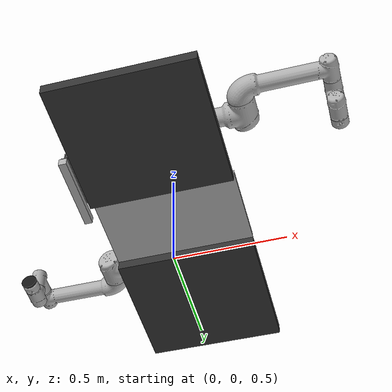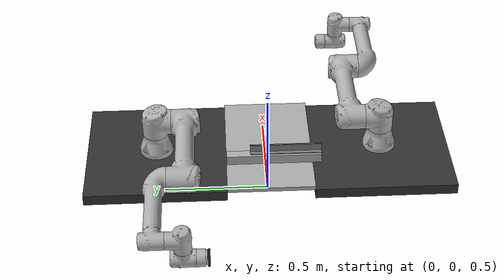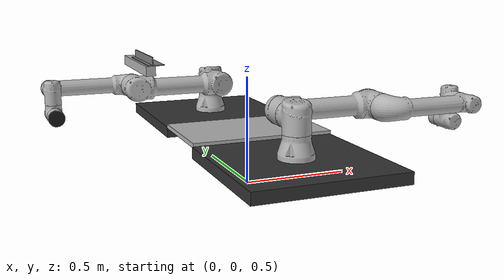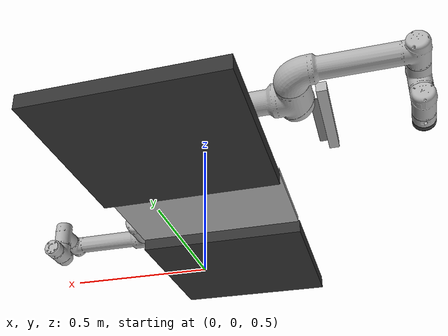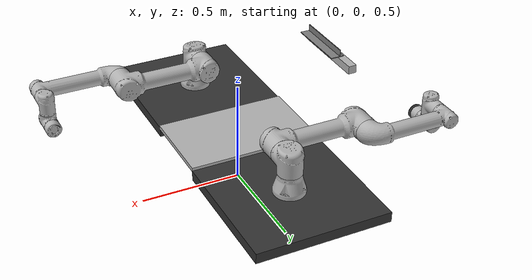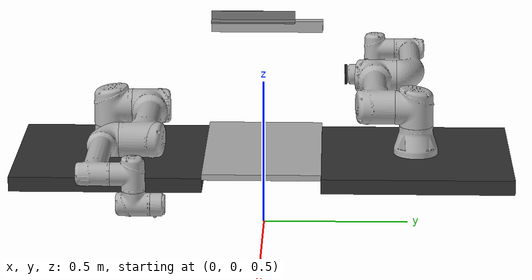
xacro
<?xml version="1.0"?>
<robot xmlns:xacro="http://www.ros.org/wiki/xacro"
       name="dual_arm_base_scene" >
  <!-- This is the main file defining our robot arrangement and physical environment. -->

  <!-- Calibration parameters -->
  <xacro:property name="a_bot_x" value="-0.004"/>
  <xacro:property name="a_bot_y" value="-0.525"/>
  <xacro:property name="a_bot_theta" value="0.0"/>
  <xacro:property name="b_bot_x" value="-0.0"/>
  <xacro:property name="b_bot_y" value="0.525"/>
  <xacro:property name="b_bot_theta" value="-3.141"/>

  <xacro:property name="bots_z" value="0.75"/>

  <!-- common stuff -->
  <xacro:include filename="$(find ur_description)/urdf/common.gazebo.xacro" />

  <!-- robots -->
  <xacro:include filename="$(find ur_e_description)/urdf/ur5e.urdf.xacro" />

  <!-- Scene items (trays, columns, tools, jigs, feeders...) -->
  <xacro:include filename="$(find dual_arm_scene_description)/urdf/dual_arm_environment.xacro" />

  <!-- Robot bases -->
  <!-- Putting these at height 0.0 makes them intersect with the ground, so they are elevated. -->
  <!-- There are some instabilities in Gazebo when the box is big, for some reason. -->
  <xacro:include filename="$(find dual_arm_scene_description)/urdf/components/dual_arm_base.xacro" />
  <xacro:dual_arm_base boxname="a_bot_base_smfl" parent="dual_arm_ground">
    <origin xyz="${a_bot_x-.65/2} ${a_bot_y-.65/2} ${bots_z-.05}" rpy="0 0 0" />
  </xacro:dual_arm_base>
  <xacro:dual_arm_base boxname="b_bot_base_smfl" parent="dual_arm_ground">
    <origin xyz="${b_bot_x-.65/2} ${b_bot_y-.65/2} ${bots_z-.05}" rpy="0 0 0" />
  </xacro:dual_arm_base>

  <!-- Main workspace -->
  <xacro:include filename="$(find dual_arm_scene_description)/urdf/components/dual_arm_box.xacro" />
  <xacro:property name="workplate_w" value="0.65"/>
  <xacro:property name="workplate_l" value="0.4"/>
  <xacro:property name="workplate_h" value="0.02"/>
  <xacro:property name="robot_mount_plate" value="0.005"/>  <!-- The plate holding the robots, resting on the alu frames -->
  <xacro:dual_arm_box boxname="workplate" box_w="${workplate_w}" box_l="${workplate_l}" box_h="${workplate_h}" parent="dual_arm_ground">
    <origin xyz="${-workplate_w/2} ${-(workplate_l/2)} ${bots_z-robot_mount_plate}" rpy="0 0 0" />
  </xacro:dual_arm_box>
  <link name="workspace_center" />
  <joint name="world_to_workspace" type="fixed">
    <parent link="dual_arm_ground" />
    <child link="workspace_center" />
    <origin xyz="0.0 0.0 ${bots_z-robot_mount_plate+workplate_h}" rpy="0.0 0.0 0.0" />
  </joint>

  <xacro:ur5e_robot prefix="a_bot_" joint_limited="true"
    shoulder_pan_lower_limit="${-pi}" shoulder_pan_upper_limit="${pi}"
    shoulder_lift_lower_limit="${-pi}" shoulder_lift_upper_limit="${pi}"
    elbow_joint_lower_limit="0.0" elbow_joint_upper_limit="${pi}"
    wrist_1_lower_limit="${-pi*1.5}" wrist_1_upper_limit="${pi}"
    wrist_2_lower_limit="${-pi*1.5}" wrist_2_upper_limit="${pi*1.5}"
    wrist_3_lower_limit="${-2*pi}" wrist_3_upper_limit="${2*pi}"
    transmission_hw_interface="hardware_interface/PositionJointInterface"
    safety_limits="false" safety_pos_margin="0.15"
    safety_k_position="20"
  />

  <xacro:ur5e_robot prefix="b_bot_" joint_limited="true"
    shoulder_pan_lower_limit="${-pi}" shoulder_pan_upper_limit="${pi}"
    shoulder_lift_lower_limit="${-pi}" shoulder_lift_upper_limit="${pi}"
    elbow_joint_lower_limit="0.0" elbow_joint_upper_limit="${pi}"
    wrist_1_lower_limit="${-pi*1.5}" wrist_1_upper_limit="${pi}"
    wrist_2_lower_limit="${-pi*1.5}" wrist_2_upper_limit="${pi*1.5}"
    wrist_3_lower_limit="${-2*pi}" wrist_3_upper_limit="${2*pi}"
    transmission_hw_interface="hardware_interface/PositionJointInterface"
    safety_limits="false" safety_pos_margin="0.15"
    safety_k_position="20"
  />

  <link name="dual_arm_ground" />

  <joint name="world_a_bot_joint" type="fixed">
    <parent link="dual_arm_ground" />
    <child link="a_bot_base_link" />
    <origin xyz="${a_bot_x} ${a_bot_y} ${bots_z}" rpy="0.0 0.0 ${a_bot_theta}" />
  </joint>

  <joint name="world_b_bot_joint" type="fixed">
    <parent link="dual_arm_ground" />
    <child link = "b_bot_base_link" />
    <origin xyz="${b_bot_x} ${b_bot_y} ${bots_z}" rpy="0.0 0.0 ${b_bot_theta}" />
  </joint>

  <!-- Spawn and attach robotiq grippers -->
  <xacro:include filename="$(find dual_arm_scene_description)/urdf/components/dual_arm_end_effector_2F-140.urdf.xacro" />
  <xacro:dual_arm_end_effector prefix="a_bot_" parent = "a_bot_ee_link" />

  <xacro:include filename="$(find dual_arm_scene_description)/urdf/components/dual_arm_end_effector.urdf.xacro" />
  <xacro:dual_arm_end_effector prefix="b_bot_" parent = "b_bot_ee_link" />

  <!-- The "world" link definition should be removed, but apparently it is necessary for Gazebo -->
  <link name="world" />
  <joint name="world_dual_arm_joint" type="fixed">
    <parent link="world" />
    <child link="dual_arm_ground" />
    <origin xyz="0.0 0.0 0.0" rpy="0.0 0.0 0.0" />
  </joint>

</robot>

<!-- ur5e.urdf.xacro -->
<robot xmlns:xacro="http://ros.org/wiki/xacro">

  <xacro:include filename="$(find ur_e_description)/urdf/ur.transmission.xacro" />
  <xacro:include filename="$(find ur_e_description)/urdf/ur.gazebo.xacro" />

  <xacro:macro name="cylinder_inertial" params="radius length mass *origin">
    <inertial>
      <mass value="${mass}" />
      <xacro:insert_block name="origin" />
      <inertia ixx="${0.0833333 * mass * (3 * radius * radius + length * length)}" ixy="0.0" ixz="0.0"
        iyy="${0.0833333 * mass * (3 * radius * radius + length * length)}" iyz="0.0"
        izz="${0.5 * mass * radius * radius}" />
    </inertial>
  </xacro:macro>

  <xacro:macro name="ur5e_robot" params="prefix joint_limited
    shoulder_pan_lower_limit:=${-pi}    shoulder_pan_upper_limit:=${pi}
    shoulder_lift_lower_limit:=${-pi}    shoulder_lift_upper_limit:=${pi}
    elbow_joint_lower_limit:=${-pi}    elbow_joint_upper_limit:=${pi}
    wrist_1_lower_limit:=${-pi}    wrist_1_upper_limit:=${pi}
    wrist_2_lower_limit:=${-pi}    wrist_2_upper_limit:=${pi}
    wrist_3_lower_limit:=${-pi}    wrist_3_upper_limit:=${pi}
    transmission_hw_interface:=hardware_interface/PositionJointInterface
    safety_limits:=false safety_pos_margin:=0.15
    safety_k_position:=20">

    <!-- Inertia parameters -->
    <xacro:property name="base_mass" value="4.0" />  <!-- This mass might be incorrect -->
    <xacro:property name="shoulder_mass" value="3.7000" />
    <xacro:property name="upper_arm_mass" value="8.3930" />
    <xacro:property name="forearm_mass" value="2.2750" />
    <xacro:property name="wrist_1_mass" value="1.2190" />
    <xacro:property name="wrist_2_mass" value="1.2190" />
    <xacro:property name="wrist_3_mass" value="0.1879" />

    <xacro:property name="shoulder_cog" value="0.0 0.00193 -0.02561" />
    <xacro:property name="upper_arm_cog" value="0.0 -0.024201 0.2125" />
    <xacro:property name="forearm_cog" value="0.0 0.0265 0.11993" />
    <xacro:property name="wrist_1_cog" value="0.0 0.110949 0.01634" />
    <xacro:property name="wrist_2_cog" value="0.0 0.0018 0.11099" />
    <xacro:property name="wrist_3_cog" value="0.0 0.001159 0.0" />

    <!-- Kinematic model -->
    <!-- Properties from urcontrol.conf -->
    <xacro:property name="d1" value="0.163" />
    <xacro:property name="a2" value="-0.425" />
    <xacro:property name="a3" value="-0.392" />
    <xacro:property name="d4" value="0.127" />
    <xacro:property name="d5" value="0.100" />
    <xacro:property name="d6" value="0.100" />

    <!-- Arbitrary offsets for shoulder/elbow joints -->
    <xacro:property name="shoulder_offset" value="0.138" />
    <xacro:property name="elbow_offset" value="-0.131" />

    <!-- link lengths used in model -->
    <xacro:property name="shoulder_height" value="${d1}" />
    <xacro:property name="upper_arm_length" value="${-a2}" />
    <xacro:property name="forearm_length" value="${-a3}" />
    <xacro:property name="wrist_1_length" value="${d4}" />
    <xacro:property name="wrist_2_length" value="${d5}" />
    <xacro:property name="wrist_3_length" value="${d6}" />
    <!--property name="shoulder_height" value="0.089159" /-->
    <!--property name="shoulder_offset" value="0.13585" /-->  <!-- shoulder_offset - elbow_offset + wrist_1_length = 0.10915 -->
    <!--property name="upper_arm_length" value="0.42500" /-->
    <!--property name="elbow_offset" value="0.1197" /-->       <!-- CAD measured -->
    <!--property name="forearm_length" value="0.39225" /-->
    <!--property name="wrist_1_length" value="0.093" /-->     <!-- CAD measured -->
    <!--property name="wrist_2_length" value="0.09465" /-->   <!-- In CAD this distance is 0.930, but in the spec it is 0.09465 -->
    <!--property name="wrist_3_length" value="0.0823" /-->

    <xacro:property name="shoulder_radius" value="0.060" />   <!-- manually measured -->
    <xacro:property name="upper_arm_radius" value="0.054" />  <!-- manually measured -->
    <xacro:property name="elbow_radius" value="0.060" />      <!-- manually measured -->
    <xacro:property name="forearm_radius" value="0.040" />    <!-- manually measured -->
    <xacro:property name="wrist_radius" value="0.045" />      <!-- manually measured -->

    <link name="${prefix}base_link" >
      <visual>
        <geometry>
          <mesh filename="package://ur_e_description/meshes/ur5e/visual/base.dae" />
        </geometry>
        <material name="LightGrey">
          <color rgba="0.7 0.7 0.7 1.0"/>
        </material>
      </visual>
      <collision>
        <geometry>
          <mesh filename="package://ur_e_description/meshes/ur5e/collision/base.stl" />
        </geometry>
      </collision>
      <xacro:cylinder_inertial radius="0.06" length="0.05" mass="${base_mass}">
        <origin xyz="0.0 0.0 0.0" rpy="0 0 0" />
      </xacro:cylinder_inertial>
    </link>

    <joint name="${prefix}shoulder_pan_joint" type="revolute">
      <parent link="${prefix}base_link" />
      <child link = "${prefix}shoulder_link" />
      <origin xyz="0.0 0.0 ${shoulder_height}" rpy="0.0 0.0 0.0" />
      <axis xyz="0 0 1" />
      <xacro:unless value="${joint_limited}">
        <limit lower="${-2.0 * pi}" upper="${2.0 * pi}" effort="150.0" velocity="3.14"/>
        <xacro:if value="${safety_limits}">
          <safety_controller soft_lower_limit="${-2.0 * pi + safety_pos_margin}" soft_upper_limit="${2.0 * pi - safety_pos_margin}" k_position="${safety_k_position}" k_velocity="0.0"/>
        </xacro:if>
      </xacro:unless>
      <xacro:if value="${joint_limited}">
        <limit lower="${shoulder_pan_lower_limit}" upper="${shoulder_pan_upper_limit}" effort="150.0" velocity="3.14"/>
        <xacro:if value="${safety_limits}">
          <safety_controller soft_lower_limit="${shoulder_pan_lower_limit + safety_pos_margin}" soft_upper_limit="${shoulder_pan_upper_limit - safety_pos_margin}" k_position="${safety_k_position}" k_velocity="0.0"/>
        </xacro:if>
      </xacro:if>
      <dynamics damping="0.0" friction="0.0"/>
    </joint>

    <link name="${prefix}shoulder_link">
      <visual>
        <geometry>
          <mesh filename="package://ur_e_description/meshes/ur5e/visual/shoulder.dae" />
        </geometry>
        <material name="LightGrey">
          <color rgba="0.7 0.7 0.7 1.0"/>
        </material>
      </visual>
      <collision>
        <geometry>
          <mesh filename="package://ur_e_description/meshes/ur5e/collision/shoulder.stl" />
        </geometry>
      </collision>
      <xacro:cylinder_inertial radius="0.06" length="0.15" mass="${shoulder_mass}">
        <origin xyz="0.0 0.0 0.0" rpy="0 0 0" />
      </xacro:cylinder_inertial>
    </link>

    <joint name="${prefix}shoulder_lift_joint" type="revolute">
      <parent link="${prefix}shoulder_link" />
      <child link = "${prefix}upper_arm_link" />
      <origin xyz="0.0 ${shoulder_offset} 0.0" rpy="0.0 ${pi / 2.0} 0.0" />
      <axis xyz="0 1 0" />
      <xacro:unless value="${joint_limited}">
        <limit lower="${-2.0 * pi}" upper="${2.0 * pi}" effort="150.0" velocity="3.14"/>
        <xacro:if value="${safety_limits}">
          <safety_controller soft_lower_limit="${-2.0 * pi + safety_pos_margin}" soft_upper_limit="${2.0 * pi - safety_pos_margin}" k_position="${safety_k_position}" k_velocity="0.0"/>
        </xacro:if>
      </xacro:unless>
      <xacro:if value="${joint_limited}">
        <limit lower="${shoulder_lift_lower_limit}" upper="${shoulder_lift_upper_limit}" effort="150.0" velocity="3.14"/>
        <xacro:if value="${safety_limits}">
          <safety_controller soft_lower_limit="${shoulder_lift_lower_limit + safety_pos_margin}" soft_upper_limit="${shoulder_lift_upper_limit - safety_pos_margin}" k_position="${safety_k_position}" k_velocity="0.0"/>
        </xacro:if>
      </xacro:if>
      <dynamics damping="0.0" friction="0.0"/>
    </joint>

    <link name="${prefix}upper_arm_link">
      <visual>
        <geometry>
          <mesh filename="package://ur_e_description/meshes/ur5e/visual/upperarm.dae" />
        </geometry>
        <material name="LightGrey">
          <color rgba="0.7 0.7 0.7 1.0"/>
        </material>
      </visual>
      <collision>
        <geometry>
          <mesh filename="package://ur_e_description/meshes/ur5e/collision/upperarm.stl" />
        </geometry>
      </collision>
      <xacro:cylinder_inertial radius="0.06" length="${upper_arm_length}" mass="${upper_arm_mass}">
        <origin xyz="0.0 0.0 ${upper_arm_length/2}" rpy="0 0 0" />
      </xacro:cylinder_inertial>
    </link>

    <joint name="${prefix}elbow_joint" type="revolute">
      <parent link="${prefix}upper_arm_link" />
      <child link = "${prefix}forearm_link" />
      <origin xyz="0.0 ${elbow_offset} ${upper_arm_length}" rpy="0.0 0.0 0.0" />
      <axis xyz="0 1 0" />
      <xacro:unless value="${joint_limited}">
        <limit lower="${-pi}" upper="${pi}" effort="150.0" velocity="3.14"/>
        <xacro:if value="${safety_limits}">
          <safety_controller soft_lower_limit="${-2.0 * pi + safety_pos_margin}" soft_upper_limit="${2.0 * pi - safety_pos_margin}" k_position="${safety_k_position}" k_velocity="0.0"/>
        </xacro:if>
      </xacro:unless>
      <xacro:if value="${joint_limited}">
        <limit lower="${elbow_joint_lower_limit}" upper="${elbow_joint_upper_limit}" effort="150.0" velocity="3.14"/>
        <xacro:if value="${safety_limits}">
          <safety_controller soft_lower_limit="${elbow_joint_lower_limit + safety_pos_margin}" soft_upper_limit="${elbow_joint_upper_limit - safety_pos_margin}" k_position="${safety_k_position}" k_velocity="0.0"/>
        </xacro:if>
      </xacro:if>
      <dynamics damping="0.0" friction="0.0"/>
    </joint>

    <link name="${prefix}forearm_link">
      <visual>
        <geometry>
          <mesh filename="package://ur_e_description/meshes/ur5e/visual/forearm.dae" />
        </geometry>
        <material name="LightGrey">
          <color rgba="0.7 0.7 0.7 1.0"/>
        </material>
      </visual>
      <collision>
        <geometry>
          <mesh filename="package://ur_e_description/meshes/ur5e/collision/forearm.stl" />
        </geometry>
      </collision>
      <xacro:cylinder_inertial radius="0.06" length="${forearm_length}" mass="${forearm_mass}">
        <origin xyz="0.0 0.0 ${forearm_length/2}" rpy="0 0 0" />
      </xacro:cylinder_inertial>
    </link>

    <joint name="${prefix}wrist_1_joint" type="revolute">
      <parent link="${prefix}forearm_link" />
      <child link = "${prefix}wrist_1_link" />
      <origin xyz="0.0 0.0 ${forearm_length}" rpy="0.0 ${pi / 2.0} 0.0" />
      <axis xyz="0 1 0" />
      <xacro:unless value="${joint_limited}">
        <limit lower="${-2.0 * pi}" upper="${2.0 * pi}" effort="28.0" velocity="6.28"/>
        <xacro:if value="${safety_limits}">
          <safety_controller soft_lower_limit="${-2.0 * pi + safety_pos_margin}" soft_upper_limit="${2.0 * pi - safety_pos_margin}" k_position="${safety_k_position}" k_velocity="0.0"/>
        </xacro:if>
      </xacro:unless>
      <xacro:if value="${joint_limited}">
        <limit lower="${wrist_1_lower_limit}" upper="${wrist_1_upper_limit}" effort="28.0" velocity="6.28"/>
        <xacro:if value="${safety_limits}">
          <safety_controller soft_lower_limit="${wrist_1_lower_limit + safety_pos_margin}" soft_upper_limit="${wrist_1_upper_limit - safety_pos_margin}" k_position="${safety_k_position}" k_velocity="0.0"/>
        </xacro:if>
      </xacro:if>
      <dynamics damping="0.0" friction="0.0"/>
    </joint>

    <link name="${prefix}wrist_1_link">
      <visual>
        <geometry>
          <mesh filename="package://ur_e_description/meshes/ur5e/visual/wrist1.dae" />
        </geometry>
        <material name="LightGrey">
          <color rgba="0.7 0.7 0.7 1.0"/>
        </material>
      </visual>
      <collision>
        <geometry>
          <mesh filename="package://ur_e_description/meshes/ur5e/collision/wrist1.stl" />
        </geometry>
      </collision>
      <xacro:cylinder_inertial radius="0.06" length="0.12" mass="${wrist_1_mass}">
        <origin xyz="0.0 ${wrist_1_length} 0.0" rpy="0 0 0" />
      </xacro:cylinder_inertial>
    </link>

    <joint name="${prefix}wrist_2_joint" type="revolute">
      <parent link="${prefix}wrist_1_link" />
      <child link = "${prefix}wrist_2_link" />
      <origin xyz="0.0 ${wrist_1_length} 0.0" rpy="0.0 0.0 0.0" />
      <axis xyz="0 0 1" />
      <xacro:unless value="${joint_limited}">
        <limit lower="${-2.0 * pi}" upper="${2.0 * pi}" effort="28.0" velocity="6.28"/>
        <xacro:if value="${safety_limits}">
          <safety_controller soft_lower_limit="${-2.0 * pi + safety_pos_margin}" soft_upper_limit="${2.0 * pi - safety_pos_margin}" k_position="${safety_k_position}" k_velocity="0.0"/>
        </xacro:if>
      </xacro:unless>
      <xacro:if value="${joint_limited}">
        <limit lower="${wrist_2_lower_limit}" upper="${wrist_2_upper_limit}" effort="28.0" velocity="6.28"/>
        <xacro:if value="${safety_limits}">
          <safety_controller soft_lower_limit="${wrist_2_lower_limit + safety_pos_margin}" soft_upper_limit="${wrist_2_upper_limit - safety_pos_margin}" k_position="${safety_k_position}" k_velocity="0.0"/>
        </xacro:if>
      </xacro:if>
      <dynamics damping="0.0" friction="0.0"/>
    </joint>

    <link name="${prefix}wrist_2_link">
      <visual>
        <geometry>
          <mesh filename="package://ur_e_description/meshes/ur5e/visual/wrist2.dae" />
        </geometry>
        <material name="LightGrey">
          <color rgba="0.7 0.7 0.7 1.0"/>
        </material>
      </visual>
      <collision>
        <geometry>
          <mesh filename="package://ur_e_description/meshes/ur5e/collision/wrist2.stl" />
        </geometry>
      </collision>
      <xacro:cylinder_inertial radius="0.06" length="0.12" mass="${wrist_2_mass}">
        <origin xyz="0.0 0.0 ${wrist_2_length}" rpy="0 0 0" />
      </xacro:cylinder_inertial>
    </link>

    <joint name="${prefix}wrist_3_joint" type="revolute">
      <parent link="${prefix}wrist_2_link" />
      <child link = "${prefix}wrist_3_link" />
      <origin xyz="0.0 0.0 ${wrist_2_length}" rpy="0.0 0.0 0.0" />
      <axis xyz="0 1 0" />
      <xacro:unless value="${joint_limited}">
        <limit lower="${-2.0 * pi}" upper="${2.0 * pi}" effort="28.0" velocity="6.28"/>
        <xacro:if value="${safety_limits}">
          <safety_controller soft_lower_limit="${-2.0 * pi + safety_pos_margin}" soft_upper_limit="${2.0 * pi - safety_pos_margin}" k_position="${safety_k_position}" k_velocity="0.0"/>
        </xacro:if>
      </xacro:unless>
      <xacro:if value="${joint_limited}">
        <limit lower="${wrist_3_lower_limit}" upper="${wrist_3_upper_limit}" effort="28.0" velocity="6.28"/>
        <xacro:if value="${safety_limits}">
          <safety_controller soft_lower_limit="${wrist_3_lower_limit + safety_pos_margin}" soft_upper_limit="${wrist_3_upper_limit - safety_pos_margin}" k_position="${safety_k_position}" k_velocity="0.0"/>
        </xacro:if>
      </xacro:if>
      <dynamics damping="0.0" friction="0.0"/>
    </joint>

    <link name="${prefix}wrist_3_link">
      <visual>
        <geometry>
          <mesh filename="package://ur_e_description/meshes/ur5e/visual/wrist3.dae" />
        </geometry>
        <material name="LightGrey">
          <color rgba="0.7 0.7 0.7 1.0"/>
        </material>
      </visual>
      <collision>
        <geometry>
          <mesh filename="package://ur_e_description/meshes/ur5e/collision/wrist3.stl" />
        </geometry>
      </collision>
      <xacro:cylinder_inertial radius="0.0375" length="0.0458" mass="${wrist_3_mass}">
        <origin xyz="0.0 ${wrist_3_length - 0.0458/2} 0.0" rpy="${pi/2} 0 0" />
      </xacro:cylinder_inertial>
    </link>

    <joint name="${prefix}ee_fixed_joint" type="fixed">
      <parent link="${prefix}wrist_3_link" />
      <child link = "${prefix}ee_link" />
      <origin xyz="0.0 ${wrist_3_length} 0.0" rpy="0.0 0.0 ${pi/2.0}" />
    </joint>

    <link name="${prefix}ee_link">
      <collision>
        <geometry>
          <box size="0.01 0.01 0.01"/>
        </geometry>
        <origin rpy="0 0 0" xyz="-0.01 0 0"/>
      </collision>
    </link>

    <xacro:ur_arm_transmission prefix="${prefix}" />
    <xacro:ur_arm_gazebo prefix="${prefix}" />

    <!-- ROS base_link to UR 'Base' Coordinates transform -->
    <link name="${prefix}base"/>
    <joint name="${prefix}base_link-base_fixed_joint" type="fixed">
      <!-- NOTE: this rotation is only needed as long as base_link itself is
                 not corrected wrt the real robot (ie: rotated over 180
                 degrees)
      -->
      <origin xyz="0 0 0" rpy="0 0 ${-pi}"/>
      <parent link="${prefix}base_link"/>
      <child link="${prefix}base"/>
    </joint>

    <!-- Frame coincident with all-zeros TCP on UR controller -->
    <link name="${prefix}tool0"/>
    <joint name="${prefix}wrist_3_link-tool0_fixed_joint" type="fixed">
      <origin xyz="0 ${wrist_3_length} 0" rpy="${pi/-2.0} 0 0"/>
      <parent link="${prefix}wrist_3_link"/>
      <child link="${prefix}tool0"/>
    </joint>

  </xacro:macro>
</robot>

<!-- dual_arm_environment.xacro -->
<robot xmlns:xacro="http://www.ros.org/wiki/xacro"
       name="dual_arm_environment" >

  <xacro:include filename="$(find dual_arm_scene_description)/urdf/components/dual_arm_box.xacro" />
  <xacro:dual_arm_box boxname="horizontal_column_for_tools" box_w=".04" box_l=".4" box_h=".04" parent="dual_arm_ground">
    <origin xyz="${-.325-.15-.04} -.2 1.058" rpy="0 0 0" />
  </xacro:dual_arm_box>

  <!-- Define screw tool frames below -->

  <!-- Tool holder -->
  <joint name="screw_tool_holder_long_to_environment_joint" type="fixed">
    <parent link="horizontal_column_for_tools" />
    <child link="screw_tool_holder_long" />
    <origin xyz=".04 .0 .04" rpy="0.0 0.0 ${-pi/2}" />
  </joint>

  <link name="screw_tool_holder_long">
    <inertial>
      <origin rpy="0 0 0" xyz="0 0 0"/>
      <mass value="1.0"/>
      <inertia ixx="1" ixy="0" ixz="0" iyy="1" iyz="0" izz="1"/>
    </inertial>
    <!-- The horizontal plate -->
    <visual>
      <origin rpy="0 0 0" xyz="-0.15 .0033 0.002"/>
      <geometry>
        <box size=".3 .066 .004"/>
      </geometry>
      <material name="grey">
        <color rgba=".5 .5 .5 1"/>
      </material>
    </visual>

    <!-- The vertical plate -->
    <visual>
      <origin rpy="0 0 0" xyz="-0.15 -.011 0.0179"/>
      <geometry>
        <box size=".3 .004 .035"/>
      </geometry>
      <material name="grey">
        <color rgba=".5 .5 .5 1"/>
      </material>
    </visual>
  </link>

  <!-- Screw tools -->
  <xacro:property name="bit_cushion_to_axis" value="0.0285"/>
  <xacro:property name="back_plate_offset_long" value=".009"/>
  <xacro:property name="back_plate_offset_short" value=".01"/>
  <xacro:property name="tool_offset" value="${-.005 + bit_cushion_to_axis}" />

  <link name="screw_tool_m4_link">
    <inertial>
      <origin rpy="0 0 0" xyz="0 0 0"/>
      <mass value="1.0"/>
      <inertia ixx="1" ixy="0" ixz="0" iyy="1" iyz="0" izz="1"/>
    </inertial>
  </link>
  <joint name="screw_tool_m4_to_holder" type="fixed">
    <parent link="screw_tool_holder_long" />
    <child link="screw_tool_m4_link" />
    <origin xyz="-0.25 ${tool_offset} 0.004" rpy="0.0 0.0 0.0" />
  </joint>

  <link name="screw_tool_m3_link">
    <inertial>
      <origin rpy="0 0 0" xyz="0 0 0"/>
      <mass value="1.0"/>
      <inertia ixx="1" ixy="0" ixz="0" iyy="1" iyz="0" izz="1"/>
    </inertial>
  </link>
  <joint name="screw_tool_m3_to_holder" type="fixed">
    <parent link="screw_tool_holder_long" />
    <child link="screw_tool_m3_link" />
    <origin xyz="-0.15 ${tool_offset} 0.004" rpy="0.0 0.0 0.0" />
  </joint>

  <!-- Extra links to position the gripper more easily -->

  <link name="screw_tool_m3_pickup_link"/>
  <joint name="screw_tool_m3_pickup_joint" type="fixed">
    <parent link="screw_tool_m3_link" />
    <child link="screw_tool_m3_pickup_link" />
    <origin xyz="0.0 0.0 0.0" rpy="0.0 ${pi} ${pi/2}" />
  </joint>

  <link name="screw_tool_m4_pickup_link"/>
  <joint name="screw_tool_m4_pickup_joint" type="fixed">
    <parent link="screw_tool_m4_link" />
    <child link="screw_tool_m4_pickup_link" />
    <origin xyz="0.0 0.0 0.0" rpy="0.0 ${pi} ${pi/2}" />
  </joint>

</robot>

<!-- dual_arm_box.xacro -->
<robot xmlns:xacro="http://www.ros.org/wiki/xacro">

  <xacro:macro name="dual_arm_box" params="boxname box_w box_l box_h parent *origin">
    <!-- This creates a box with the origin in the bottom corner, fixed to the world link. -->

    <link name="${boxname}">
      <!-- w is in x, l is in y, h is in z -->
      <visual>
        <origin xyz="${box_w/2} ${box_l/2} ${box_h/2}" rpy="0 0 0"/>
        <geometry>
          <box size="${box_w} ${box_l} ${box_h}"/>
        </geometry>
        <material name="Grey">
          <color rgba="0.7 0.7 0.7 1.0"/>
        </material>
      </visual>
      <collision>
        <origin xyz="${box_w/2} ${box_l/2} ${box_h/2}" rpy="0 0 0"/>
        <geometry>
          <box size="${box_w} ${box_l} ${box_h}"/>
        </geometry>
      </collision>

      <!-- This is required for Gazebo. -->
      <inertial>
        <mass value="1.0" />
        <inertia ixx="0.0" ixy="0.0" ixz="0.0"
          iyy="0.0" iyz="0.0"
          izz="0.0" />
      </inertial>
    </link>
    <gazebo reference="${boxname}">
      <material>Gazebo/Grey</material>
    </gazebo>

    <joint name="${boxname}" type="fixed">
      <parent link="${parent}" />
      <child link = "${boxname}" />
      <xacro:insert_block name="origin"/>
    </joint>
  </xacro:macro>
</robot>

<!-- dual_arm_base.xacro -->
<robot xmlns:xacro="http://www.ros.org/wiki/xacro">

  <xacro:macro name="dual_arm_base" params="boxname parent *origin">
    <!-- This creates a box with the origin in the bottom corner, fixed to the world link. -->

    <xacro:property name="box_w" value=".65"/>
    <xacro:property name="box_l" value=".65"/>
    <xacro:property name="box_h" value=".05"/>

    <link name="${boxname}">
      <!-- w is in x, l is in y, h is in z -->
      <visual>
        <origin xyz="${box_w/2} ${box_l/2} ${box_h/2}" rpy="0 0 0"/>
        <geometry>
          <box size="${box_w} ${box_l} ${box_h}"/>
        </geometry>
        <material name="DarkGrey">
          <color rgba="0.2 0.2 0.2 1.0"/>
        </material>
      </visual>
      <collision>
      <origin xyz="${box_w/2} ${box_l/2} ${box_h/2}" rpy="0 0 0"/>
        <geometry>
          <box size="${box_w} ${box_l} ${box_h}"/>
        </geometry>
      </collision>

      <!-- This is required for Gazebo. -->
      <inertial>
        <mass value="1.0" />
        <inertia ixx="0.0" ixy="0.0" ixz="0.0"
          iyy="0.0" iyz="0.0"
          izz="0.0" />
      </inertial>

    </link>
    <gazebo reference="${boxname}">
      <material>Gazebo/FlatBlack</material>
    </gazebo>

    <joint name="${boxname}" type="fixed">
      <parent link="${parent}" />
      <child link = "${boxname}" />
      <xacro:insert_block name="origin"/>
    </joint>
  </xacro:macro>
</robot>

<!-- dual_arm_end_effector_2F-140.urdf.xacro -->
<!-- This file is a safety measure because a_bot is temporarily using a 2F-140 gripper
     instead of a 2F-85 gripper. The tip link is set to the . -->

<robot name="robotiq_85_gripper_test" xmlns:xacro="http://www.ros.org/wiki/xacro">

  <xacro:macro name="dual_arm_end_effector" params="prefix parent">

    <!-- Add an additional link to plan with. Oriented like the UR ee_link frame. -->
    <joint name="${prefix}robotiq_85_tip_link_joint" type="fixed">
      <parent link="${parent}"/>
      <child link="${prefix}robotiq_85_tip_link"/>
      <origin rpy="0.0 0.0 0.0" xyz="${.163+.083} 0.0 0.0"/>
    </joint>
    <link name="${prefix}robotiq_85_tip_link"/>
  </xacro:macro>
</robot>

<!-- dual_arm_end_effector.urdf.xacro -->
<!-- This macro adds a convenient TF frame at the tip of the closed gripper. -->
<!-- The position of the TF frame has not been measured at all and needs to be calibrated. -->

<robot name="robotiq_85_gripper_test" xmlns:xacro="http://www.ros.org/wiki/xacro">

  <xacro:macro name="dual_arm_end_effector" params="prefix parent">

    <link name="${prefix}_coupling">
      <visual>
        <origin rpy="0 ${pi/2} 0" xyz=".005 0 0"/>
        <geometry>
          <cylinder length="0.01" radius="0.0375"/>
        </geometry>
        <material name="black">
        <color rgba=".1 .1 .1 1"/>
      </material>
      </visual>
      <collision>
        <origin rpy="0 ${pi/2} 0" xyz=".005 0 0"/>
        <geometry>
          <cylinder length="0.01" radius="0.0375"/>
        </geometry>
      </collision>
    </link>
    <joint name="${prefix}_coupling_joint" type="fixed">
      <parent link="${parent}" />
      <child link = "${prefix}_coupling" />
      <origin rpy="0 0 0" xyz="0 0 0"/>
    </joint>

    <!-- Add an additional link to plan with. Oriented like the UR ee_link frame. -->
    <joint name="${prefix}robotiq_85_tip_link_joint" type="fixed">
      <parent link="${parent}"/>
      <child link="${prefix}robotiq_85_tip_link"/>
      <origin rpy="0 0 0" xyz=".163 0 0"/>
    </joint>
    <link name="${prefix}robotiq_85_tip_link"/>
  </xacro:macro>
</robot>
